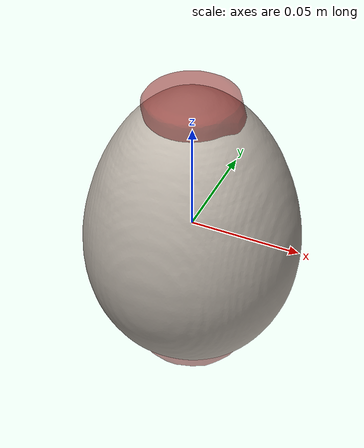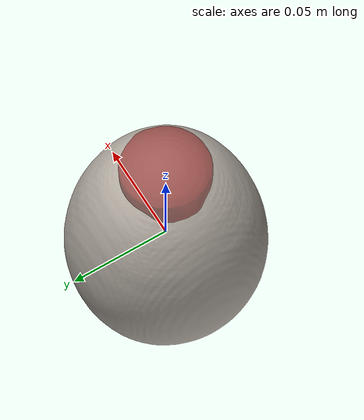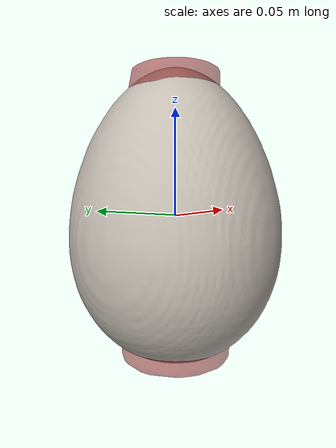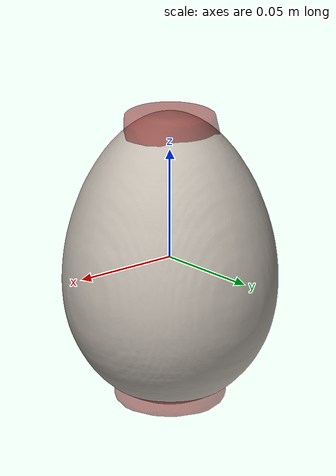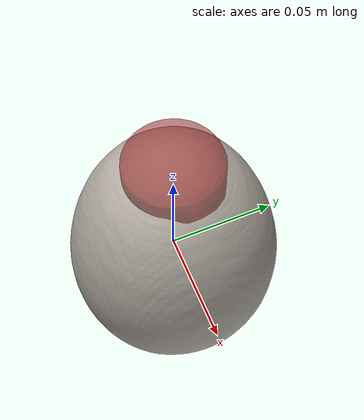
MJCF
<?xml version='1.0' encoding='utf-8'?>
<mujoco model="water_bottle_5">
  <asset>
    <mesh file="visual/model_normalized_0.obj" name="model_normalized_0_vis" scale="0.135 0.135 0.135" refquat="1.0 0.0 0.0 0.0" />
    <mesh file="visual/model_normalized_1.obj" name="model_normalized_1_vis" scale="0.135 0.135 0.135" refquat="1.0 0.0 0.0 0.0" />
    <texture type="2d" name="image3" file="visual/image3.png" />
    <texture type="2d" name="image0" file="visual/image0.png" />
    <material name="blinn5" texture="image3" specular="0.18" shininess="0.12" />
    <material name="lambert1.002" texture="image0" specular="0.12" shininess="0.08" />
    <mesh file="collision/collision_mesh_collision_0.obj" name="water_collision_mesh_0" scale="0.135 0.135 0.135" refquat="1.0 0.0 0.0 0.0" />
    <mesh file="collision/collision_mesh_collision_1.obj" name="water_collision_mesh_1" scale="0.135 0.135 0.135" refquat="1.0 0.0 0.0 0.0" />
    <mesh file="collision/collision_mesh_collision_2.obj" name="water_collision_mesh_2" scale="0.135 0.135 0.135" refquat="1.0 0.0 0.0 0.0" />
    <mesh file="collision/collision_mesh_collision_3.obj" name="water_collision_mesh_3" scale="0.135 0.135 0.135" refquat="1.0 0.0 0.0 0.0" />
    <mesh file="collision/collision_mesh_collision_4.obj" name="water_collision_mesh_4" scale="0.135 0.135 0.135" refquat="1.0 0.0 0.0 0.0" />
    </asset>
  <custom><text name="material_gt" data="plastic" /></custom>
  <default>
    <default class="region">
      <geom group="1" conaffinity="0" contype="0" rgba="0 1 0 0" />
      </default>
    <default class="collision">
      <geom group="0" rgba="0.5 0 0 0.5" density="1000.0" />
      </default>
    </default>
  <worldbody>
    <body>
      <body name="object">
        <geom solimp="0.998 0.998 0.001" solref="0.001 1" density="100" friction="0.95 0.3 0.1" type="mesh" mesh="model_normalized_0_vis" conaffinity="0" contype="0" group="1" material="blinn5" />
        <geom solimp="0.998 0.998 0.001" solref="0.001 1" density="100" friction="0.95 0.3 0.1" type="mesh" mesh="model_normalized_1_vis" conaffinity="0" contype="0" group="1" material="lambert1.002" />
        <geom class="region" name="reg_bbox" type="box" pos="0.00045051930000000127 2.904052500000025e-05 6.750000003385992e-10" size="0.0249059799 0.02500217145 0.06750000067499999" />
        <geom mesh="water_collision_mesh_0" type="mesh" class="collision" />
        <geom mesh="water_collision_mesh_1" type="mesh" class="collision" />
        <geom mesh="water_collision_mesh_2" type="mesh" class="collision" />
        <geom mesh="water_collision_mesh_3" type="mesh" class="collision" />
        <geom mesh="water_collision_mesh_4" type="mesh" class="collision" />
        </body>
      </body>
    </worldbody>
  </mujoco>
